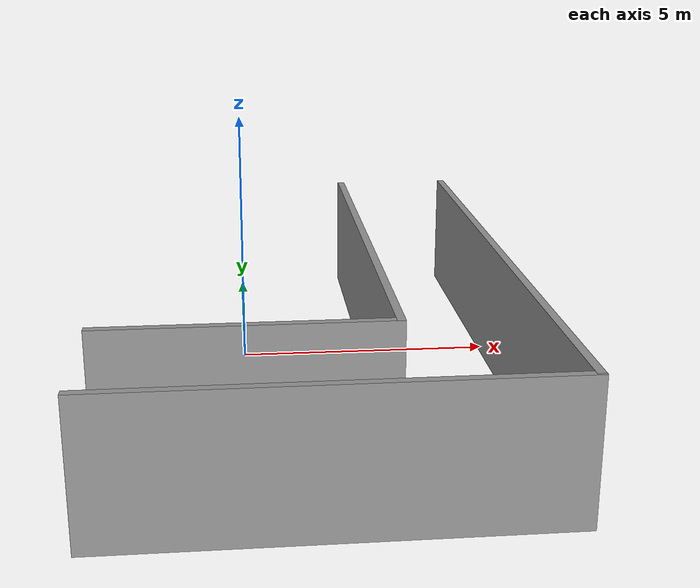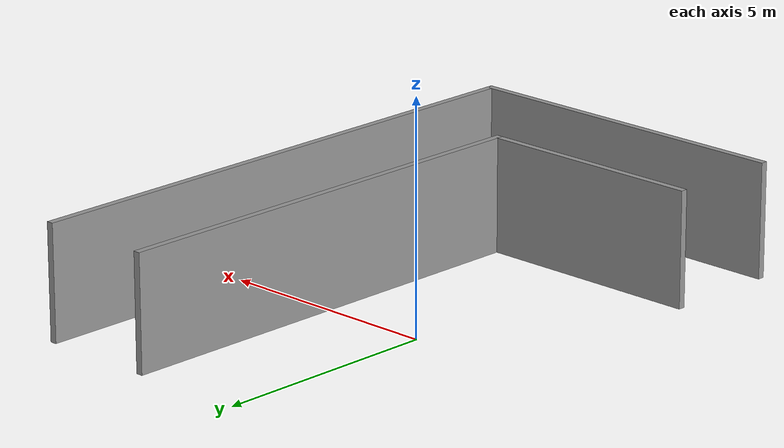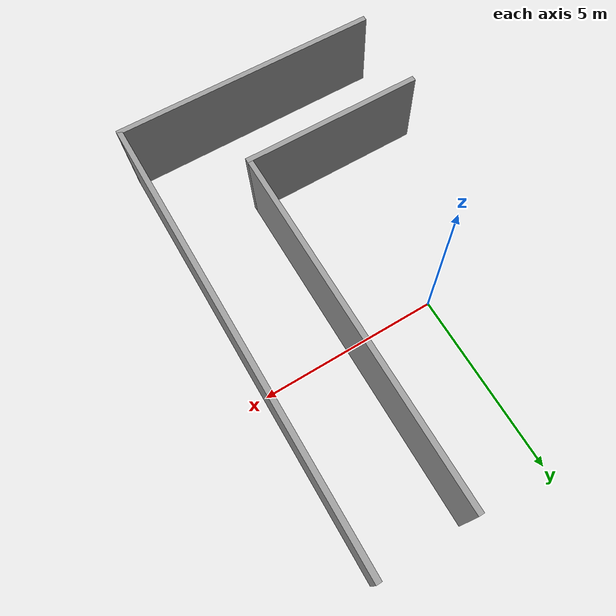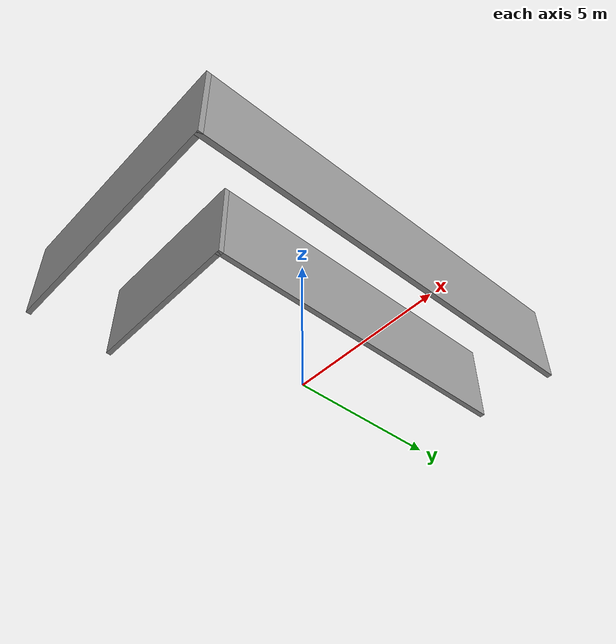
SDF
<?xml version='1.0'?>
<sdf version='1.7'>
  <model name='corridor_withTurn'>
    <pose>1.25 -1.25 0 0 -0 0</pose>
    <link name='Wall_10'>
      <collision name='Wall_10_Collision'>
        <geometry>
          <box>
            <size>10.15 0.15 2.5</size>
          </box>
        </geometry>
        <pose>0 0 1.25 0 -0 0</pose>
      </collision>
      <visual name='Wall_10_Visual'>
        <pose>0 0 1.25 0 -0 0</pose>
        <geometry>
          <box>
            <size>10.15 0.15 2.5</size>
          </box>
        </geometry>
        <material>
          <script>
            <uri>file://media/materials/scripts/gazebo.material</uri>
            <name>Gazebo/Grey</name>
          </script>
          <ambient>1 1 1 1</ambient>
        </material>
        <meta>
          <layer>0</layer>
        </meta>
      </visual>
      <pose>1.25 1.25 0 0 -0 -1.5708</pose>
    </link>
    <link name='Wall_12'>
      <collision name='Wall_12_Collision'>
        <geometry>
          <box>
            <size>7.65 0.15 2.5</size>
          </box>
        </geometry>
        <pose>0 0 1.25 0 -0 0</pose>
      </collision>
      <visual name='Wall_12_Visual'>
        <pose>0 0 1.25 0 -0 0</pose>
        <geometry>
          <box>
            <size>7.65 0.15 2.5</size>
          </box>
        </geometry>
        <material>
          <script>
            <uri>file://media/materials/scripts/gazebo.material</uri>
            <name>Gazebo/Grey</name>
          </script>
          <ambient>1 1 1 1</ambient>
        </material>
        <meta>
          <layer>0</layer>
        </meta>
      </visual>
      <pose>-0 -6.25 0 0 -0 3.14159</pose>
    </link>
    <link name='Wall_14'>
      <collision name='Wall_14_Collision'>
        <geometry>
          <box>
            <size>5.15 0.15 2.5</size>
          </box>
        </geometry>
        <pose>0 0 1.25 0 -0 0</pose>
      </collision>
      <visual name='Wall_14_Visual'>
        <pose>0 0 1.25 0 -0 0</pose>
        <geometry>
          <box>
            <size>5.15 0.15 2.5</size>
          </box>
        </geometry>
        <material>
          <script>
            <uri>file://media/materials/scripts/gazebo.material</uri>
            <name>Gazebo/Grey</name>
          </script>
          <ambient>1 1 1 1</ambient>
        </material>
        <meta>
          <layer>0</layer>
        </meta>
      </visual>
      <pose>-1.25 -3.75 0 0 -0 3.14159</pose>
    </link>
    <link name='Wall_8'>
      <collision name='Wall_8_Collision'>
        <geometry>
          <box>
            <size>12.65 0.15 2.5</size>
          </box>
        </geometry>
        <pose>0 0 1.25 0 -0 0</pose>
      </collision>
      <visual name='Wall_8_Visual'>
        <pose>0 0 1.25 0 -0 0</pose>
        <geometry>
          <box>
            <size>12.65 0.15 2.5</size>
          </box>
        </geometry>
        <material>
          <script>
            <uri>file://media/materials/scripts/gazebo.material</uri>
            <name>Gazebo/Grey</name>
          </script>
          <ambient>1 1 1 1</ambient>
        </material>
        <meta>
          <layer>0</layer>
        </meta>
      </visual>
      <pose>3.75 0 0 0 -0 -1.5708</pose>
    </link>
    <static>1</static>
  </model>
</sdf>
